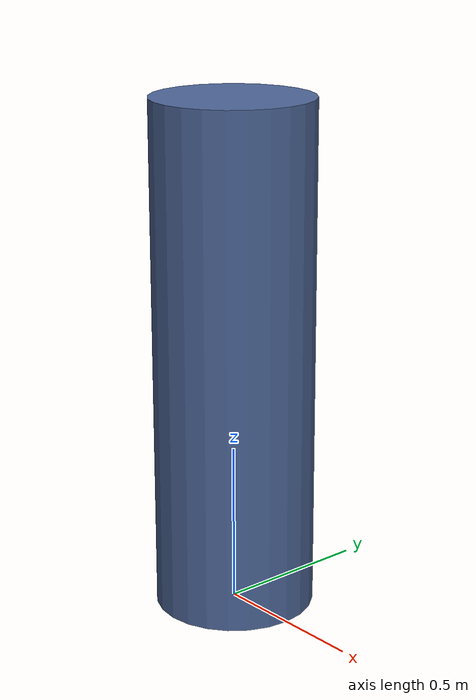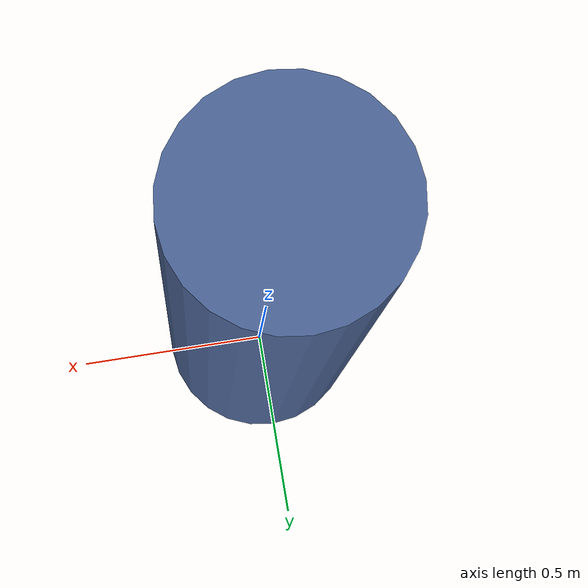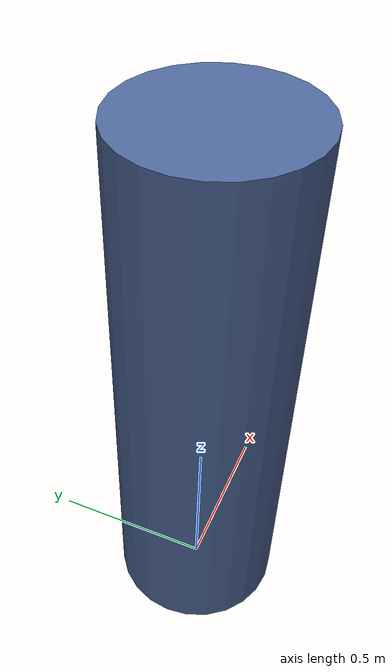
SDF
<?xml version="1.0"?>
<sdf version="1.6">
  <model name="human">
    <static>false</static>
    <link name="link">
      <inertial>
        <mass>70.0</mass>
        <inertia>
          <ixx>20.0</ixx><ixy>0</ixy><ixz>0</ixz>
          <iyy>20.0</iyy><iyz>0</iyz>
          <izz>5.0</izz>
        </inertia>
      </inertial>

      <!-- cylinder: radius 0.25 m, height 1.6 m, centred at z=0.8 m -->
      <collision name="collision">
        <pose>0 0 0.8 0 0 0</pose>
        <geometry>
          <cylinder>
            <radius>0.25</radius>
            <length>1.6</length>
          </cylinder>
        </geometry>
        <surface>
          <friction>
            <ode><mu>1.0</mu><mu2>1.0</mu2></ode>
          </friction>
          <contact>
            <ode>
              <kp>1e+13</kp>
              <kd>1.0</kd>
              <max_vel>0.01</max_vel>
              <min_depth>0.001</min_depth>
            </ode>
          </contact>
        </surface>
      </collision>

      <visual name="visual">
        <pose>0 0 0.8 0 0 0</pose>
        <geometry>
          <cylinder>
            <radius>0.25</radius>
            <length>1.6</length>
          </cylinder>
        </geometry>
        <material>
          <ambient>0.3 0.4 0.6 1</ambient>
          <diffuse>0.3 0.4 0.6 1</diffuse>
        </material>
      </visual>

      <!-- ensure it is standing up-->
      <gravity>1</gravity>
    </link>

    <!-- model_push plugin: same as triton but subscribes to /ped_cmd_vel -->
    <plugin name="model_push" filename="libteam2_model_push.so">
      <topicName>/ped_cmd_vel</topicName>
    </plugin>
  </model>
</sdf>
